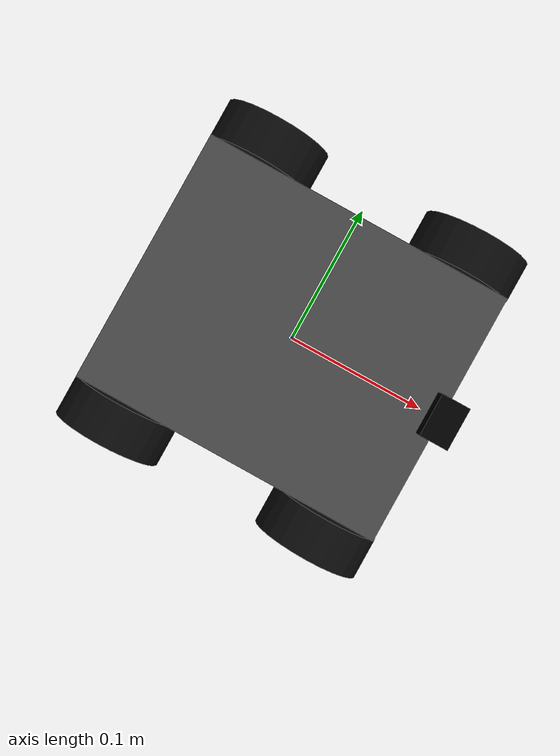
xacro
<?xml version="1.0"?>
<robot name="piston_bot" xmlns:xacro="http://www.ros.org/wiki/xacro">

  <!-- ============ Chassis ============ -->
  <link name="base_link">
    <visual>
      <geometry><box size="0.22 0.18 0.08"/></geometry>
      <material name="grey"><color rgba="0.3 0.3 0.3 1"/></material>
    </visual>
    <collision>
      <geometry><box size="0.22 0.18 0.08"/></geometry>
    </collision>
    <inertial>
      <mass value="1.0"/>
      <inertia ixx="0.003" iyy="0.005" izz="0.006" ixy="0" ixz="0" iyz="0"/>
    </inertial>
  </link>

  <!-- ============ Wheels (4x) ============ -->
  <xacro:macro name="wheel" params="name x y">
    <link name="${name}_link">
      <visual>
        <origin xyz="0 0 0" rpy="1.5708 0 0"/>
        <geometry><cylinder radius="0.04" length="0.03"/></geometry>
        <material name="black"><color rgba="0.05 0.05 0.05 1"/></material>
      </visual>
      <collision>
        <origin xyz="0 0 0" rpy="1.5708 0 0"/>
        <geometry><cylinder radius="0.04" length="0.03"/></geometry>
      </collision>
      <inertial>
        <mass value="0.08"/>
        <inertia ixx="0.00003" iyy="0.00003" izz="0.00005" ixy="0" ixz="0" iyz="0"/>
      </inertial>
    </link>
    <joint name="${name}_joint" type="continuous">
      <parent link="base_link"/>
      <child link="${name}_link"/>
      <origin xyz="${x} ${y} -0.02" rpy="0 0 0"/>
      <axis xyz="0 1 0"/>
    </joint>
  </xacro:macro>

  <xacro:wheel name="wheel_fl" x="0.08"  y="0.11"/>
  <xacro:wheel name="wheel_fr" x="0.08"  y="-0.11"/>
  <xacro:wheel name="wheel_rl" x="-0.08" y="0.11"/>
  <xacro:wheel name="wheel_rr" x="-0.08" y="-0.11"/>

  <!-- ============ Mono camera ============ -->
  <link name="mono_camera_link">
    <visual>
      <geometry><box size="0.02 0.03 0.02"/></geometry>
      <material name="cam_black"><color rgba="0 0 0 1"/></material>
    </visual>
    <inertial><mass value="0.01"/><inertia ixx="1e-6" iyy="1e-6" izz="1e-6" ixy="0" ixz="0" iyz="0"/></inertial>
  </link>
  <joint name="mono_camera_joint" type="fixed">
    <parent link="base_link"/>
    <child link="mono_camera_link"/>
    <origin xyz="0.11 0 0.05" rpy="0 0 0"/>
  </joint>

  <!-- ============ Ultrasonic sensor ============ -->
  <link name="ultrasonic_link">
    <visual>
      <geometry><box size="0.02 0.02 0.02"/></geometry>
      <material name="us_grey"><color rgba="0.6 0.6 0.6 1"/></material>
    </visual>
    <inertial><mass value="0.01"/><inertia ixx="1e-6" iyy="1e-6" izz="1e-6" ixy="0" ixz="0" iyz="0"/></inertial>
  </link>
  <joint name="ultrasonic_joint" type="fixed">
    <parent link="base_link"/>
    <child link="ultrasonic_link"/>
    <origin xyz="0.11 0 -0.01" rpy="0 0 0"/>
  </joint>

  <!-- ============ Gazebo sensors ============ -->
  <gazebo reference="mono_camera_link">
    <sensor type="camera" name="mono_camera">
      <update_rate>30</update_rate>
      <camera>
        <horizontal_fov>1.047</horizontal_fov>
        <image><width>640</width><height>480</height><format>R8G8B8</format></image>
        <clip><near>0.05</near><far>15</far></clip>
      </camera>
      <topic>/mono/image</topic>
      <always_on>true</always_on>
      <visualize>true</visualize>
    </sensor>
  </gazebo>

  <gazebo reference="ultrasonic_link">
    <sensor type="gpu_lidar" name="ultrasonic_sensor">
      <update_rate>15</update_rate>
      <lidar>
        <scan>
          <horizontal><samples>1</samples><min_angle>0</min_angle><max_angle>0</max_angle></horizontal>
          <vertical><samples>1</samples><min_angle>0</min_angle><max_angle>0</max_angle></vertical>
        </scan>
        <range><min>0.02</min><max>4.0</max><resolution>0.01</resolution></range>
      </lidar>
      <topic>/ultrasonic_scan</topic>
      <always_on>true</always_on>
    </sensor>
  </gazebo>

  <!-- ============ Movement + odometry plugins ============ -->
  <gazebo>
    <plugin filename="gz-sim-diff-drive-system" name="gz::sim::systems::DiffDrive">
      <left_joint>wheel_fl_joint</left_joint>
      <left_joint>wheel_rl_joint</left_joint>
      <right_joint>wheel_fr_joint</right_joint>
      <right_joint>wheel_rr_joint</right_joint>
      <wheel_separation>0.22</wheel_separation>
      <wheel_radius>0.04</wheel_radius>
      <odom_publish_frequency>20</odom_publish_frequency>
      <topic>cmd_vel</topic>
    </plugin>
    <plugin filename="gz-sim-joint-state-publisher-system" name="gz::sim::systems::JointStatePublisher"></plugin>
    <plugin filename="gz-sim-odometry-publisher-system" name="gz::sim::systems::OdometryPublisher">
      <odom_frame>odom</odom_frame>
      <robot_base_frame>base_link</robot_base_frame>
    </plugin>
  </gazebo>

</robot>
